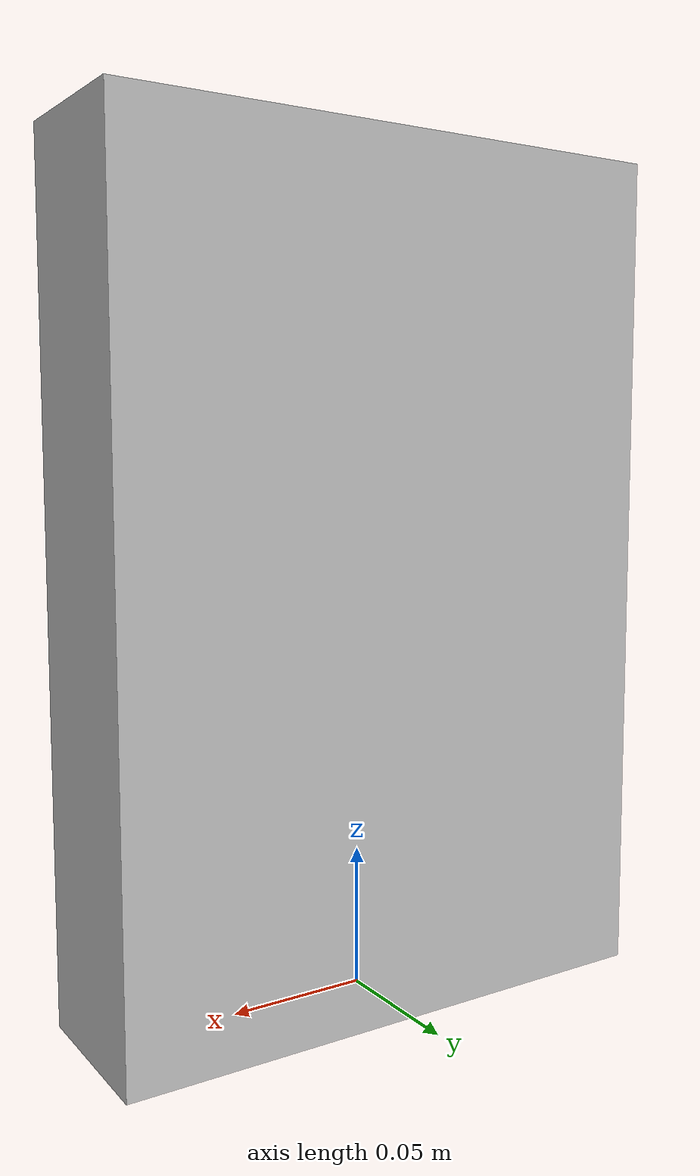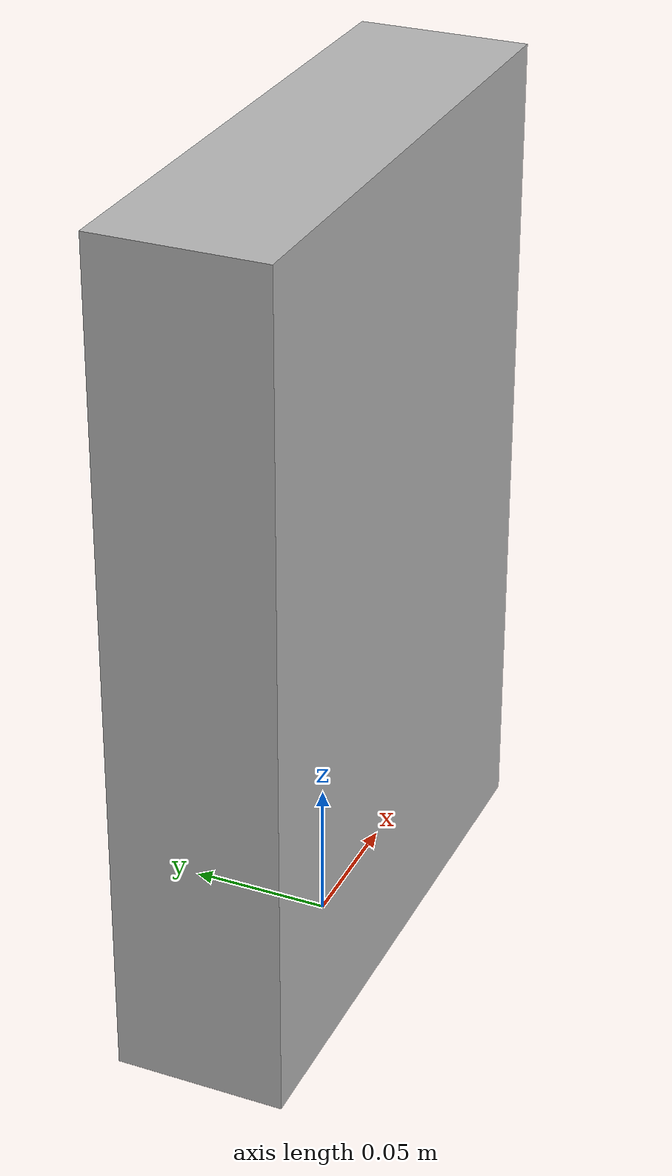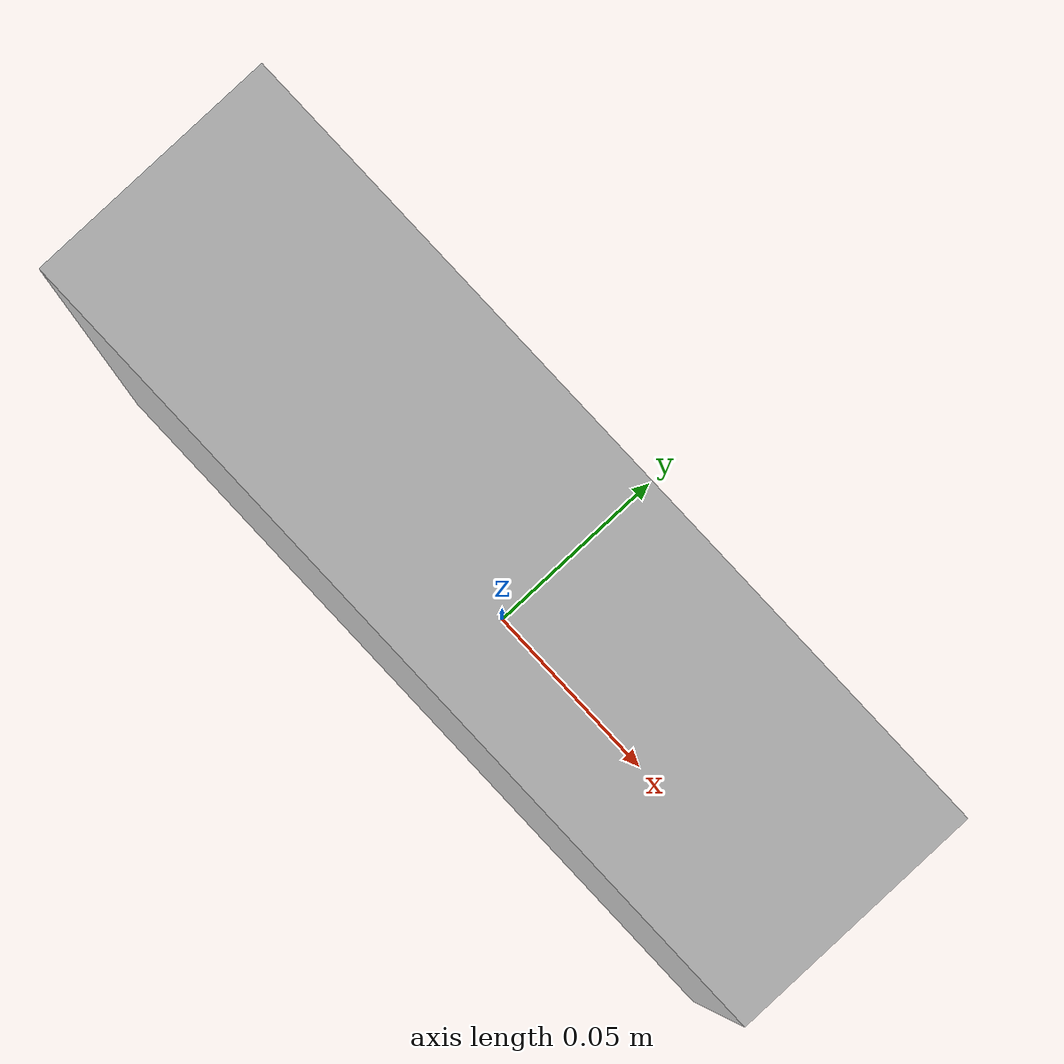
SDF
<sdf version="1.4">
  <model name="cereal_mr_t">
    <static>0</static>
    <link name="link">

      <collision name="colision1">
        <pose>0 0 0 0 0 0</pose>
        <geometry>
          <mesh>
            <uri>model://cereal_mr_t/meshes/cereal_mr_t.dae</uri>
	    <scale> 0.6 0.6 0.6 </scale>
          </mesh>
        </geometry>
        <surface>
          <bounce />
          <friction>
            <ode />
          </friction>
          <contact>
            <ode />
          </contact>
        </surface>
      </collision>

      <visual name="visual1">
        <pose>0 0 0 0 0 0</pose>
        <geometry>
          <mesh>
            <uri>model://cereal_mr_t/meshes/cereal_mr_t.dae</uri>
	    <scale> 0.6 0.6 0.6 </scale>
          </mesh>
        </geometry>
      </visual>

      <velocity_decay>
        <linear>0.000000</linear>
        <angular>0.000000</angular>
      </velocity_decay>
      <self_collide>0</self_collide>
      <kinematic>0</kinematic>
      <gravity>1</gravity>
    </link>
  </model>
</sdf>
